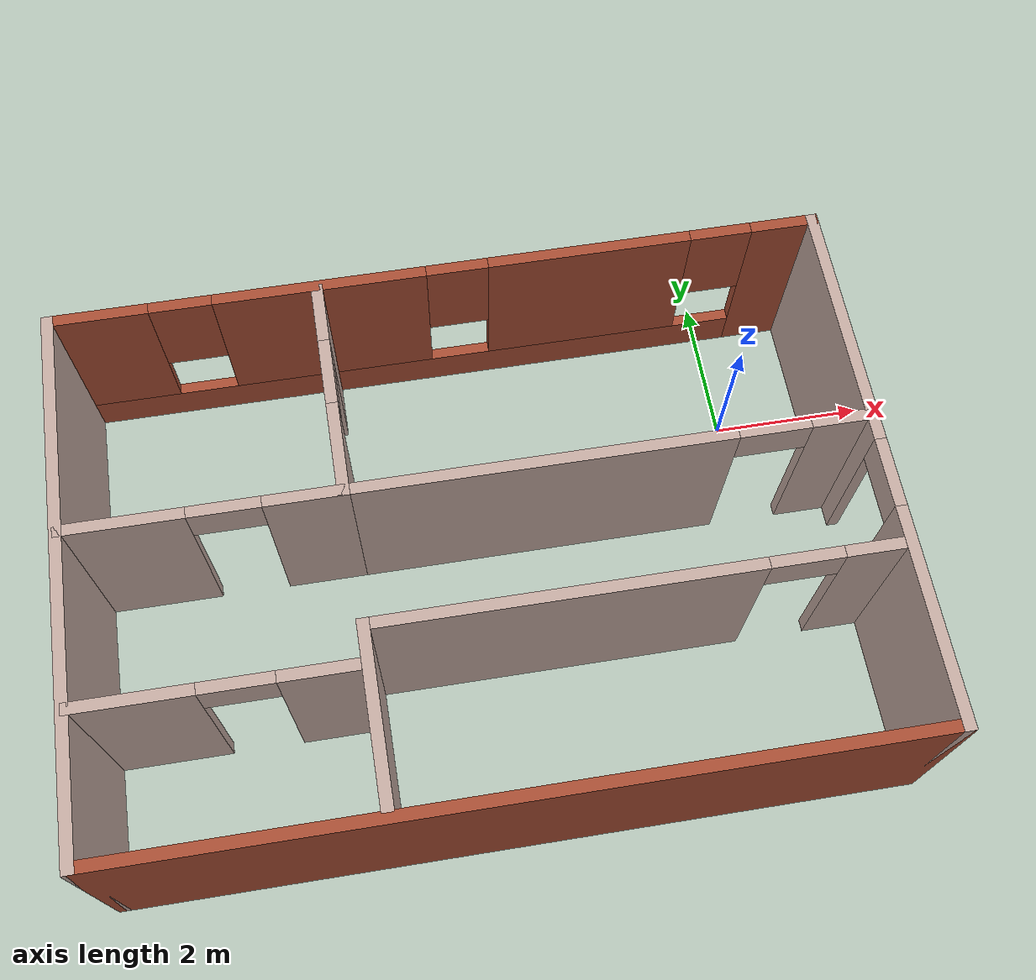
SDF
<?xml version='1.0'?>
<sdf version='1.7'>
  <model name='House'>
    <pose>-3.70417 -1.85041 0 0 -0 0</pose>
    <link name='Wall_11'>
      <collision name='Wall_11_Collision'>
        <geometry>
          <box>
            <size>2.25 0.15 2.5</size>
          </box>
        </geometry>
        <pose>0 0 1.25 0 -0 0</pose>
      </collision>
      <visual name='Wall_11_Visual'>
        <pose>0 0 1.25 0 -0 0</pose>
        <geometry>
          <box>
            <size>2.25 0.15 2.5</size>
          </box>
        </geometry>
        <material>
          <script>
            <uri>file://media/materials/scripts/gazebo.material</uri>
            <name>Gazebo/Grey</name>
          </script>
          <ambient>0.760784 0.662745 0.627451 1</ambient>
        </material>
        <meta>
          <layer>0</layer>
        </meta>
      </visual>
      <pose>-1.51277 -2.24857 0 0 -0 -1.5708</pose>
    </link>
    <link name='Wall_13'>
      <pose>1.66223 -1.19857 0 0 -0 0</pose>
      <visual name='Wall_13_Visual_0'>
        <pose>-0.842733 0 1.25 0 -0 0</pose>
        <geometry>
          <box>
            <size>4.81453 0.15 2.5</size>
          </box>
        </geometry>
        <material>
          <script>
            <uri>file://media/materials/scripts/gazebo.material</uri>
            <name>Gazebo/Grey</name>
          </script>
          <ambient>0.760784 0.662745 0.627451 1</ambient>
        </material>
        <meta>
          <layer>0</layer>
        </meta>
      </visual>
      <collision name='Wall_13_Collision_0'>
        <geometry>
          <box>
            <size>4.81453 0.15 2.5</size>
          </box>
        </geometry>
        <pose>-0.842733 0 1.25 0 -0 0</pose>
      </collision>
      <visual name='Wall_13_Visual_1'>
        <pose>2.85727 0 1.25 0 -0 0</pose>
        <geometry>
          <box>
            <size>0.785466 0.15 2.5</size>
          </box>
        </geometry>
        <material>
          <script>
            <uri>file://media/materials/scripts/gazebo.material</uri>
            <name>Gazebo/Grey</name>
          </script>
          <ambient>0.760784 0.662745 0.627451 1</ambient>
        </material>
        <meta>
          <layer>0</layer>
        </meta>
      </visual>
      <collision name='Wall_13_Collision_1'>
        <geometry>
          <box>
            <size>0.785466 0.15 2.5</size>
          </box>
        </geometry>
        <pose>2.85727 0 1.25 0 -0 0</pose>
      </collision>
      <visual name='Wall_13_Visual_2'>
        <pose>2.01453 0 2.25 0 -0 0</pose>
        <geometry>
          <box>
            <size>0.9 0.15 0.5</size>
          </box>
        </geometry>
        <material>
          <script>
            <uri>file://media/materials/scripts/gazebo.material</uri>
            <name>Gazebo/Grey</name>
          </script>
          <ambient>0.760784 0.662745 0.627451 1</ambient>
        </material>
        <meta>
          <layer>0</layer>
        </meta>
      </visual>
      <collision name='Wall_13_Collision_2'>
        <geometry>
          <box>
            <size>0.9 0.15 0.5</size>
          </box>
        </geometry>
        <pose>2.01453 0 2.25 0 -0 0</pose>
      </collision>
    </link>
    <link name='Wall_2'>
      <pose>0 3.425 0 0 -0 3.14159</pose>
      <visual name='Wall_2_Visual_0'>
        <pose>-4.55322 0 1.25 0 -0 0</pose>
        <geometry>
          <box>
            <size>0.893563 0.15 2.5</size>
          </box>
        </geometry>
        <material>
          <script>
            <uri>file://media/materials/scripts/gazebo.material</uri>
            <name>Gazebo/Bricks</name>
          </script>
          <ambient>1 1 1 1</ambient>
        </material>
        <meta>
          <layer>0</layer>
        </meta>
      </visual>
      <collision name='Wall_2_Collision_0'>
        <geometry>
          <box>
            <size>0.893563 0.15 2.5</size>
          </box>
        </geometry>
        <pose>-4.55322 0 1.25 0 -0 0</pose>
      </collision>
      <visual name='Wall_2_Visual_1'>
        <pose>0.446781 0 0.25 0 -0 0</pose>
        <geometry>
          <box>
            <size>9.10644 0.15 0.5</size>
          </box>
        </geometry>
        <material>
          <script>
            <uri>file://media/materials/scripts/gazebo.material</uri>
            <name>Gazebo/Bricks</name>
          </script>
          <ambient>1 1 1 1</ambient>
        </material>
        <meta>
          <layer>0</layer>
        </meta>
      </visual>
      <collision name='Wall_2_Collision_1'>
        <geometry>
          <box>
            <size>9.10644 0.15 0.5</size>
          </box>
        </geometry>
        <pose>0.446781 0 0.25 0 -0 0</pose>
      </collision>
      <visual name='Wall_2_Visual_2'>
        <pose>-1.98544 0 1.5 0 -0 0</pose>
        <geometry>
          <box>
            <size>2.64199 0.15 2</size>
          </box>
        </geometry>
        <material>
          <script>
            <uri>file://media/materials/scripts/gazebo.material</uri>
            <name>Gazebo/Bricks</name>
          </script>
          <ambient>1 1 1 1</ambient>
        </material>
        <meta>
          <layer>0</layer>
        </meta>
      </visual>
      <collision name='Wall_2_Collision_2'>
        <geometry>
          <box>
            <size>2.64199 0.15 2</size>
          </box>
        </geometry>
        <pose>-1.98544 0 1.5 0 -0 0</pose>
      </collision>
      <visual name='Wall_2_Visual_3'>
        <pose>1.50114 0 1.5 0 -0 0</pose>
        <geometry>
          <box>
            <size>2.73116 0.15 2</size>
          </box>
        </geometry>
        <material>
          <script>
            <uri>file://media/materials/scripts/gazebo.material</uri>
            <name>Gazebo/Bricks</name>
          </script>
          <ambient>1 1 1 1</ambient>
        </material>
        <meta>
          <layer>0</layer>
        </meta>
      </visual>
      <collision name='Wall_2_Collision_3'>
        <geometry>
          <box>
            <size>2.73116 0.15 2</size>
          </box>
        </geometry>
        <pose>1.50114 0 1.5 0 -0 0</pose>
      </collision>
      <visual name='Wall_2_Visual_4'>
        <pose>4.33336 0 1.5 0 -0 0</pose>
        <geometry>
          <box>
            <size>1.33328 0.15 2</size>
          </box>
        </geometry>
        <material>
          <script>
            <uri>file://media/materials/scripts/gazebo.material</uri>
            <name>Gazebo/Bricks</name>
          </script>
          <ambient>1 1 1 1</ambient>
        </material>
        <meta>
          <layer>0</layer>
        </meta>
      </visual>
      <collision name='Wall_2_Collision_4'>
        <geometry>
          <box>
            <size>1.33328 0.15 2</size>
          </box>
        </geometry>
        <pose>4.33336 0 1.5 0 -0 0</pose>
      </collision>
      <visual name='Wall_2_Visual_5'>
        <pose>-3.70644 0 1.9 0 -0 0</pose>
        <geometry>
          <box>
            <size>0.8 0.15 1.2</size>
          </box>
        </geometry>
        <material>
          <script>
            <uri>file://media/materials/scripts/gazebo.material</uri>
            <name>Gazebo/Bricks</name>
          </script>
          <ambient>1 1 1 1</ambient>
        </material>
        <meta>
          <layer>0</layer>
        </meta>
      </visual>
      <collision name='Wall_2_Collision_5'>
        <geometry>
          <box>
            <size>0.8 0.15 1.2</size>
          </box>
        </geometry>
        <pose>-3.70644 0 1.9 0 -0 0</pose>
      </collision>
      <visual name='Wall_2_Visual_6'>
        <pose>-0.264443 0 1.9 0 -0 0</pose>
        <geometry>
          <box>
            <size>0.8 0.15 1.2</size>
          </box>
        </geometry>
        <material>
          <script>
            <uri>file://media/materials/scripts/gazebo.material</uri>
            <name>Gazebo/Bricks</name>
          </script>
          <ambient>1 1 1 1</ambient>
        </material>
        <meta>
          <layer>0</layer>
        </meta>
      </visual>
      <collision name='Wall_2_Collision_6'>
        <geometry>
          <box>
            <size>0.8 0.15 1.2</size>
          </box>
        </geometry>
        <pose>-0.264443 0 1.9 0 -0 0</pose>
      </collision>
      <visual name='Wall_2_Visual_7'>
        <pose>3.26672 0 1.9 0 -0 0</pose>
        <geometry>
          <box>
            <size>0.8 0.15 1.2</size>
          </box>
        </geometry>
        <material>
          <script>
            <uri>file://media/materials/scripts/gazebo.material</uri>
            <name>Gazebo/Bricks</name>
          </script>
          <ambient>1 1 1 1</ambient>
        </material>
        <meta>
          <layer>0</layer>
        </meta>
      </visual>
      <collision name='Wall_2_Collision_7'>
        <geometry>
          <box>
            <size>0.8 0.15 1.2</size>
          </box>
        </geometry>
        <pose>3.26672 0 1.9 0 -0 0</pose>
      </collision>
    </link>
    <link name='Wall_24'>
      <pose>-3.21181 0.51698 0 0 -0 3.14159</pose>
      <visual name='Wall_24_Visual_0'>
        <pose>-1.22693 0 1.25 0 -0 0</pose>
        <geometry>
          <box>
            <size>1.04614 0.15 2.5</size>
          </box>
        </geometry>
        <material>
          <script>
            <uri>file://media/materials/scripts/gazebo.material</uri>
            <name>Gazebo/Grey</name>
          </script>
          <ambient>0.760784 0.662745 0.627451 1</ambient>
        </material>
        <meta>
          <layer>0</layer>
        </meta>
      </visual>
      <collision name='Wall_24_Collision_0'>
        <geometry>
          <box>
            <size>1.04614 0.15 2.5</size>
          </box>
        </geometry>
        <pose>-1.22693 0 1.25 0 -0 0</pose>
      </collision>
      <visual name='Wall_24_Visual_1'>
        <pose>0.973072 0 1.25 0 -0 0</pose>
        <geometry>
          <box>
            <size>1.55386 0.15 2.5</size>
          </box>
        </geometry>
        <material>
          <script>
            <uri>file://media/materials/scripts/gazebo.material</uri>
            <name>Gazebo/Grey</name>
          </script>
          <ambient>0.760784 0.662745 0.627451 1</ambient>
        </material>
        <meta>
          <layer>0</layer>
        </meta>
      </visual>
      <collision name='Wall_24_Collision_1'>
        <geometry>
          <box>
            <size>1.55386 0.15 2.5</size>
          </box>
        </geometry>
        <pose>0.973072 0 1.25 0 -0 0</pose>
      </collision>
      <visual name='Wall_24_Visual_2'>
        <pose>-0.253857 0 2.25 0 -0 0</pose>
        <geometry>
          <box>
            <size>0.9 0.15 0.5</size>
          </box>
        </geometry>
        <material>
          <script>
            <uri>file://media/materials/scripts/gazebo.material</uri>
            <name>Gazebo/Grey</name>
          </script>
          <ambient>0.760784 0.662745 0.627451 1</ambient>
        </material>
        <meta>
          <layer>0</layer>
        </meta>
      </visual>
      <collision name='Wall_24_Collision_2'>
        <geometry>
          <box>
            <size>0.9 0.15 0.5</size>
          </box>
        </geometry>
        <pose>-0.253857 0 2.25 0 -0 0</pose>
      </collision>
    </link>
    <link name='Wall_28'>
      <pose>-3.19305 -1.66544 0 0 -0 3.14159</pose>
      <visual name='Wall_28_Visual_0'>
        <pose>-1.19732 0 1.25 0 -0 0</pose>
        <geometry>
          <box>
            <size>1.10536 0.15 2.5</size>
          </box>
        </geometry>
        <material>
          <script>
            <uri>file://media/materials/scripts/gazebo.material</uri>
            <name>Gazebo/Grey</name>
          </script>
          <ambient>0.760784 0.662745 0.627451 1</ambient>
        </material>
        <meta>
          <layer>0</layer>
        </meta>
      </visual>
      <collision name='Wall_28_Collision_0'>
        <geometry>
          <box>
            <size>1.10536 0.15 2.5</size>
          </box>
        </geometry>
        <pose>-1.19732 0 1.25 0 -0 0</pose>
      </collision>
      <visual name='Wall_28_Visual_1'>
        <pose>1.00268 0 1.25 0 -0 0</pose>
        <geometry>
          <box>
            <size>1.49464 0.15 2.5</size>
          </box>
        </geometry>
        <material>
          <script>
            <uri>file://media/materials/scripts/gazebo.material</uri>
            <name>Gazebo/Grey</name>
          </script>
          <ambient>0.760784 0.662745 0.627451 1</ambient>
        </material>
        <meta>
          <layer>0</layer>
        </meta>
      </visual>
      <collision name='Wall_28_Collision_1'>
        <geometry>
          <box>
            <size>1.49464 0.15 2.5</size>
          </box>
        </geometry>
        <pose>1.00268 0 1.25 0 -0 0</pose>
      </collision>
      <visual name='Wall_28_Visual_2'>
        <pose>-0.194643 0 2.25 0 -0 0</pose>
        <geometry>
          <box>
            <size>0.9 0.15 0.5</size>
          </box>
        </geometry>
        <material>
          <script>
            <uri>file://media/materials/scripts/gazebo.material</uri>
            <name>Gazebo/Grey</name>
          </script>
          <ambient>0.760784 0.662745 0.627451 1</ambient>
        </material>
        <meta>
          <layer>0</layer>
        </meta>
      </visual>
      <collision name='Wall_28_Collision_2'>
        <geometry>
          <box>
            <size>0.9 0.15 0.5</size>
          </box>
        </geometry>
        <pose>-0.194643 0 2.25 0 -0 0</pose>
      </collision>
    </link>
    <link name='Wall_4'>
      <collision name='Wall_4_Collision'>
        <geometry>
          <box>
            <size>7 0.15 2.5</size>
          </box>
        </geometry>
        <pose>0 0 1.25 0 -0 0</pose>
      </collision>
      <visual name='Wall_4_Visual'>
        <pose>0 0 1.25 0 -0 0</pose>
        <geometry>
          <box>
            <size>7 0.15 2.5</size>
          </box>
        </geometry>
        <material>
          <script>
            <uri>file://media/materials/scripts/gazebo.material</uri>
            <name>Gazebo/Grey</name>
          </script>
          <ambient>0.760784 0.662745 0.627451 1</ambient>
        </material>
        <meta>
          <layer>0</layer>
        </meta>
      </visual>
      <pose>-4.925 -0 0 0 -0 -1.5708</pose>
    </link>
    <link name='Wall_5'>
      <collision name='Wall_5_Collision'>
        <geometry>
          <box>
            <size>10 0.15 2.5</size>
          </box>
        </geometry>
        <pose>0 0 1.25 0 -0 0</pose>
      </collision>
      <visual name='Wall_5_Visual'>
        <pose>0 0 1.25 0 -0 0</pose>
        <geometry>
          <box>
            <size>10 0.15 2.5</size>
          </box>
        </geometry>
        <material>
          <script>
            <uri>file://media/materials/scripts/gazebo.material</uri>
            <name>Gazebo/Bricks</name>
          </script>
          <ambient>0.760784 0.662745 0.627451 1</ambient>
        </material>
        <meta>
          <layer>0</layer>
        </meta>
      </visual>
      <pose>0 -3.425 0 0 -0 0</pose>
    </link>
    <link name='Wall_6'>
      <pose>4.925 -0 0 0 -0 1.5708</pose>
      <visual name='Wall_6_Visual_0'>
        <pose>-2.11545 0 1.25 0 -0 0</pose>
        <geometry>
          <box>
            <size>2.7691 0.15 2.5</size>
          </box>
        </geometry>
        <material>
          <script>
            <uri>file://media/materials/scripts/gazebo.material</uri>
            <name>Gazebo/Grey</name>
          </script>
          <ambient>0.760784 0.662745 0.627451 1</ambient>
        </material>
        <meta>
          <layer>0</layer>
        </meta>
      </visual>
      <collision name='Wall_6_Collision_0'>
        <geometry>
          <box>
            <size>2.7691 0.15 2.5</size>
          </box>
        </geometry>
        <pose>-2.11545 0 1.25 0 -0 0</pose>
      </collision>
      <visual name='Wall_6_Visual_1'>
        <pose>1.83455 0 1.25 0 -0 0</pose>
        <geometry>
          <box>
            <size>3.3309 0.15 2.5</size>
          </box>
        </geometry>
        <material>
          <script>
            <uri>file://media/materials/scripts/gazebo.material</uri>
            <name>Gazebo/Grey</name>
          </script>
          <ambient>0.760784 0.662745 0.627451 1</ambient>
        </material>
        <meta>
          <layer>0</layer>
        </meta>
      </visual>
      <collision name='Wall_6_Collision_1'>
        <geometry>
          <box>
            <size>3.3309 0.15 2.5</size>
          </box>
        </geometry>
        <pose>1.83455 0 1.25 0 -0 0</pose>
      </collision>
      <visual name='Wall_6_Visual_2'>
        <pose>-0.280903 0 2.25 0 -0 0</pose>
        <geometry>
          <box>
            <size>0.9 0.15 0.5</size>
          </box>
        </geometry>
        <material>
          <script>
            <uri>file://media/materials/scripts/gazebo.material</uri>
            <name>Gazebo/Grey</name>
          </script>
          <ambient>0.760784 0.662745 0.627451 1</ambient>
        </material>
        <meta>
          <layer>0</layer>
        </meta>
      </visual>
      <collision name='Wall_6_Collision_2'>
        <geometry>
          <box>
            <size>0.9 0.15 0.5</size>
          </box>
        </geometry>
        <pose>-0.280903 0 2.25 0 -0 0</pose>
      </collision>
    </link>
    <link name='Wall_8'>
      <pose>-1.53681 1.94198 0 0 -0 -1.5708</pose>
      <visual name='Wall_8_Visual_0'>
        <pose>-1.08397 0 1.25 0 -0 0</pose>
        <geometry>
          <box>
            <size>0.832063 0.15 2.5</size>
          </box>
        </geometry>
        <material>
          <script>
            <uri>file://media/materials/scripts/gazebo.material</uri>
            <name>Gazebo/Grey</name>
          </script>
          <ambient>0.760784 0.662745 0.627451 1</ambient>
        </material>
        <meta>
          <layer>0</layer>
        </meta>
      </visual>
      <collision name='Wall_8_Collision_0'>
        <geometry>
          <box>
            <size>0.832063 0.15 2.5</size>
          </box>
        </geometry>
        <pose>-1.08397 0 1.25 0 -0 0</pose>
      </collision>
      <visual name='Wall_8_Visual_1'>
        <pose>0.866031 0 1.25 0 -0 0</pose>
        <geometry>
          <box>
            <size>1.26794 0.15 2.5</size>
          </box>
        </geometry>
        <material>
          <script>
            <uri>file://media/materials/scripts/gazebo.material</uri>
            <name>Gazebo/Grey</name>
          </script>
          <ambient>0.760784 0.662745 0.627451 1</ambient>
        </material>
        <meta>
          <layer>0</layer>
        </meta>
      </visual>
      <collision name='Wall_8_Collision_1'>
        <geometry>
          <box>
            <size>1.26794 0.15 2.5</size>
          </box>
        </geometry>
        <pose>0.866031 0 1.25 0 -0 0</pose>
      </collision>
      <visual name='Wall_8_Visual_2'>
        <pose>-0.217937 0 2.25 0 -0 0</pose>
        <geometry>
          <box>
            <size>0.9 0.15 0.5</size>
          </box>
        </geometry>
        <material>
          <script>
            <uri>file://media/materials/scripts/gazebo.material</uri>
            <name>Gazebo/Grey</name>
          </script>
          <ambient>0.760784 0.662745 0.627451 1</ambient>
        </material>
        <meta>
          <layer>0</layer>
        </meta>
      </visual>
      <collision name='Wall_8_Collision_2'>
        <geometry>
          <box>
            <size>0.9 0.15 0.5</size>
          </box>
        </geometry>
        <pose>-0.217937 0 2.25 0 -0 0</pose>
      </collision>
    </link>
    <link name='Wall_9'>
      <pose>1.63819 0.51698 0 0 -0 0</pose>
      <visual name='Wall_9_Visual_0'>
        <pose>-0.810487 0 1.25 0 -0 0</pose>
        <geometry>
          <box>
            <size>4.87903 0.15 2.5</size>
          </box>
        </geometry>
        <material>
          <script>
            <uri>file://media/materials/scripts/gazebo.material</uri>
            <name>Gazebo/Grey</name>
          </script>
          <ambient>0.760784 0.662745 0.627451 1</ambient>
        </material>
        <meta>
          <layer>0</layer>
        </meta>
      </visual>
      <collision name='Wall_9_Collision_0'>
        <geometry>
          <box>
            <size>4.87903 0.15 2.5</size>
          </box>
        </geometry>
        <pose>-0.810487 0 1.25 0 -0 0</pose>
      </collision>
      <visual name='Wall_9_Visual_1'>
        <pose>2.88951 0 1.25 0 -0 0</pose>
        <geometry>
          <box>
            <size>0.720973 0.15 2.5</size>
          </box>
        </geometry>
        <material>
          <script>
            <uri>file://media/materials/scripts/gazebo.material</uri>
            <name>Gazebo/Grey</name>
          </script>
          <ambient>0.760784 0.662745 0.627451 1</ambient>
        </material>
        <meta>
          <layer>0</layer>
        </meta>
      </visual>
      <collision name='Wall_9_Collision_1'>
        <geometry>
          <box>
            <size>0.720973 0.15 2.5</size>
          </box>
        </geometry>
        <pose>2.88951 0 1.25 0 -0 0</pose>
      </collision>
      <visual name='Wall_9_Visual_2'>
        <pose>2.07903 0 2.25 0 -0 0</pose>
        <geometry>
          <box>
            <size>0.9 0.15 0.5</size>
          </box>
        </geometry>
        <material>
          <script>
            <uri>file://media/materials/scripts/gazebo.material</uri>
            <name>Gazebo/Grey</name>
          </script>
          <ambient>0.760784 0.662745 0.627451 1</ambient>
        </material>
        <meta>
          <layer>0</layer>
        </meta>
      </visual>
      <collision name='Wall_9_Collision_2'>
        <geometry>
          <box>
            <size>0.9 0.15 0.5</size>
          </box>
        </geometry>
        <pose>2.07903 0 2.25 0 -0 0</pose>
      </collision>
    </link>
    <static>1</static>
  </model>
</sdf>
